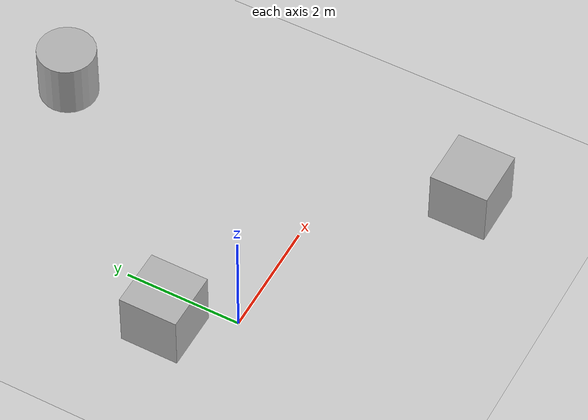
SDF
<sdf version="1.9">
 <world name="demo">
  <model name="box">
   <pose>-0.633749 0.959498 0.5 0 0 -0</pose>
   <link name="box_link">
    <inertial>
     <inertia><ixx>0.16666</ixx><ixy>0</ixy><ixz>0</ixz><iyy>0.16666</iyy><iyz>0</iyz><izz>0.16666</izz></inertia>
     <mass>1</mass>
    </inertial>
    <collision name="box_collision"><geometry><box><size>1 1 1</size></box></geometry></collision>
    <visual name="box_visual">
     <geometry><box><size>1 1 1</size></box></geometry>
     <material>
      <ambient>0.3 0.3 0.3 1</ambient>
      <diffuse>0.7 0.7 0.7 1</diffuse>
      <specular>1 1 1 1</specular>
     </material>
    </visual>
   </link>
   <static>false</static>
  </model>
  <model name="box_0">
   <pose>3.84314 -2.13245 0.5 0 0 -0</pose>
   <link name="box_link">
    <inertial>
     <inertia><ixx>0.16666</ixx><ixy>0</ixy><ixz>0</ixz><iyy>0.16666</iyy><iyz>0</iyz><izz>0.16666</izz></inertia>
     <mass>1</mass>
    </inertial>
    <collision name="box_collision"><geometry><box><size>1 1 1</size></box></geometry></collision>
    <visual name="box_visual">
     <geometry><box><size>1 1 1</size></box></geometry>
     <material>
      <ambient>0.3 0.3 0.3 1</ambient>
      <diffuse>0.7 0.7 0.7 1</diffuse>
      <specular>1 1 1 1</specular>
     </material>
    </visual>
   </link>
   <static>false</static>
  </model>
  <model name="cylinder">
   <pose>2.87012 4.80508 0.499999 0 -0 -0</pose>
   <link name="cylinder_link">
    <inertial>
     <inertia>
      <ixx>0.14580000000000001</ixx>
      <ixy>0</ixy>
      <ixz>0</ixz>
      <iyy>0.14580000000000001</iyy>
      <iyz>0</iyz>
      <izz>0.125</izz>
     </inertia>
     <mass>1</mass>
    </inertial>
    <collision name="cylinder_collision">
     <geometry><cylinder><radius>0.5</radius><length>1</length></cylinder></geometry>
    </collision>
    <visual name="cylinder_visual">
     <geometry><cylinder><radius>0.5</radius><length>1</length></cylinder></geometry>
     <material>
      <ambient>0.3 0.3 0.3 1</ambient>
      <diffuse>0.7 0.7 0.7 1</diffuse>
      <specular>1 1 1 1</specular>
     </material>
    </visual>
   </link>
   <static>false</static>
  </model>
  <plugin filename="ignition-gazebo-physics-system" name="ignition::gazebo::systems::Physics"/>
  <plugin filename="ignition-gazebo-scene-broadcaster-system" name="ignition::gazebo::systems::SceneBroadcaster"/>
  <plugin name="ignition::gazebo::systems::UserCommands" filename="ignition-gazebo-user-commands-system"/>
  <plugin filename="libignition-gazebo-imu-system.so" name="ignition::gazebo::systems::Imu"/>
  <plugin filename="libignition-gazebo-joint-state-publisher-system.so" name="ignition::gazebo::systems::JointStatePublisher"/>
  <plugin filename="libignition-gazebo-triggered-publisher-system.so" name="ignition::gazebo::systems::TriggeredPublisher">
   <input type="ignition.msgs.Int32" topic="/keyboard/keypress"><match field="data">16777235</match></input>
   <output type="ignition.msgs.Twist" topic="/cmd_vel">linear: {x: 0.5}, angular: {z: 0.0}</output>
  </plugin>
  <plugin filename="libignition-gazebo-triggered-publisher-system.so" name="ignition::gazebo::systems::TriggeredPublisher">
   <input type="ignition.msgs.Int32" topic="/keyboard/keypress"><match field="data">16777237</match></input>
   <output type="ignition.msgs.Twist" topic="/cmd_vel">linear: {x: -0.5}, angular: {z: 0.0}</output>
  </plugin>
  <plugin filename="libignition-gazebo-triggered-publisher-system.so" name="ignition::gazebo::systems::TriggeredPublisher">
   <input type="ignition.msgs.Int32" topic="/keyboard/keypress"><match field="data">16777236</match></input>
   <output type="ignition.msgs.Twist" topic="/cmd_vel">linear: {x: 0.0}, angular: {z: -0.5}</output>
  </plugin>
  <plugin filename="libignition-gazebo-triggered-publisher-system.so" name="ignition::gazebo::systems::TriggeredPublisher">
   <input type="ignition.msgs.Int32" topic="/keyboard/keypress"><match field="data">16777234</match></input>
   <output type="ignition.msgs.Twist" topic="/cmd_vel">linear: {x: 0.0}, angular: {z: 0.5}</output>
  </plugin>
  <plugin filename="libignition-gazebo-sensors-system.so" name="ignition::gazebo::systems::Sensors">
   <render_engine>ogre2</render_engine>
  </plugin>
  <light name="sun" type="directional">
   <pose>0 0 10 0 -0 0</pose>
   <diffuse>0.8 0.8 0.8 1</diffuse>
   <specular>0.2 0.2 0.2 1</specular>
   <attenuation>
    <range>1000</range>
    <constant>0.9</constant>
    <linear>0.01</linear>
    <quadratic>0.001</quadratic>
   </attenuation>
   <direction>-0.5 0.1 -0.9</direction>
   <spot><inner_angle>0</inner_angle><outer_angle>0</outer_angle><falloff>0</falloff></spot>
  </light>
  <model name="ground_plane">
   <static>1</static>
   <link name="link">
    <collision name="collision">
     <geometry><plane><normal>0 0 1</normal><size>100 100</size></plane></geometry>
     <surface>
      <contact><collide_bitmask>65535</collide_bitmask></contact>
      <friction><ode><mu>100</mu><mu2>50</mu2></ode></friction>
     </surface>
    </collision>
    <visual name="visual">
     <cast_shadows>0</cast_shadows>
     <geometry><plane><normal>0 0 1</normal><size>100 100</size></plane></geometry>
     <material>
      <script><uri>file://media/materials/scripts/gazebo.material</uri><name>Gazebo/Grey</name></script>
     </material>
    </visual>
   </link>
  </model>
  <gravity>0 0 -9.8</gravity>
  <magnetic_field>6e-06 2.3e-05 -4.2e-05</magnetic_field>
  <atmosphere type="adiabatic"/>
  <physics type="ode">
   <max_step_size>0.001</max_step_size>
   <real_time_factor>1</real_time_factor>
   <real_time_update_rate>1000</real_time_update_rate>
  </physics>
  <scene><ambient>0.4 0.4 0.4 1</ambient><background>0.7 0.7 0.7 1</background><shadows>1</shadows></scene>
  <audio><device>default</device></audio>
  <spherical_coordinates>
   <surface_model>EARTH_WGS84</surface_model>
   <latitude_deg>0</latitude_deg>
   <longitude_deg>0</longitude_deg>
   <elevation>0</elevation>
   <heading_deg>0</heading_deg>
  </spherical_coordinates>
 </world>
</sdf>
